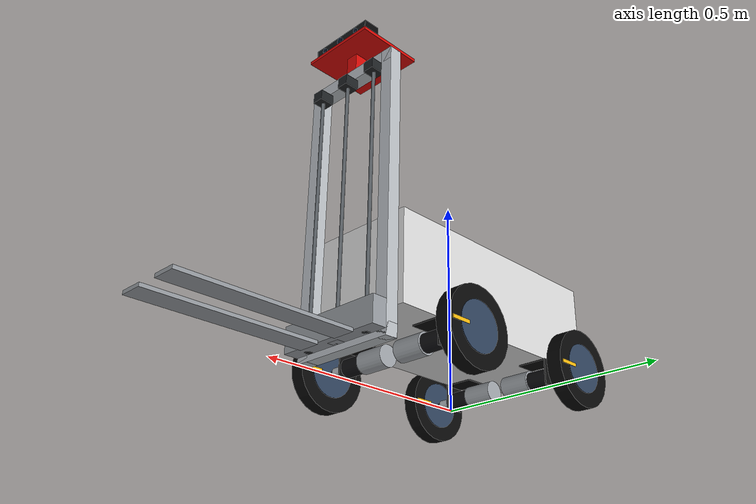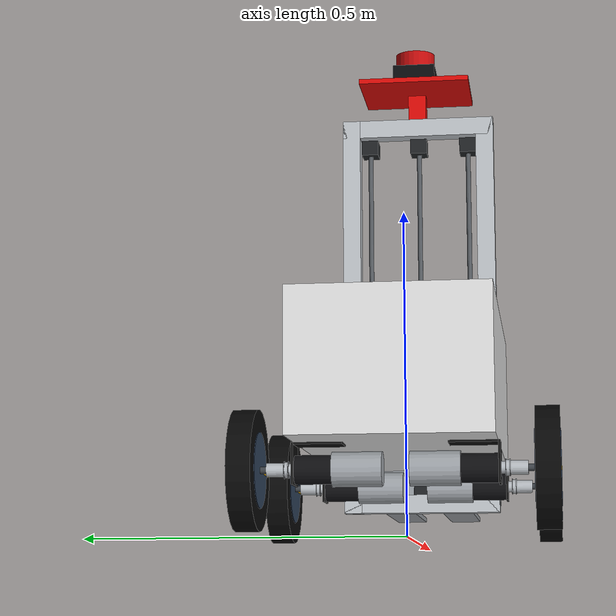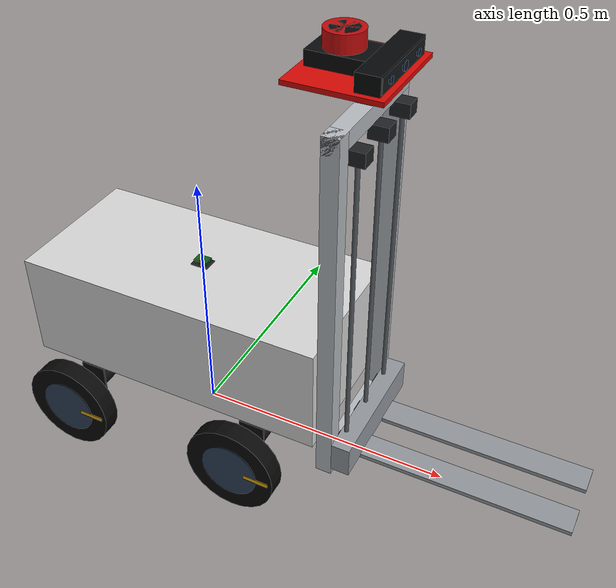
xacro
<?xml version="1.0"?>
<robot xmlns:xacro="http://www.ros.org/wiki/xacro" name="robot">

    <!-- Simulation is the current default.  A real-hardware launch can set
         use_sim:=false and provide its serial SystemInterface plugin name. -->
    <xacro:arg name="use_sim" default="true"/>
    <xacro:arg name="hardware_plugin"
               default="gz_ros2_control/GazeboSimSystem"/>
    <xacro:arg name="controllers_file"
               default="$(find tai_robot_one)/config/ros2_controllers.yaml"/>

    <!-- Real-hardware parameters are ignored by gz_ros2_control. Stable udev
         symlinks are mandatory because ttyUSB numbering is not deterministic. -->
    <xacro:arg name="drive_serial_port" default="/dev/tai_drive"/>
    <xacro:arg name="lift_serial_port" default="/dev/tai_lift"/>
    <xacro:arg name="use_lift" default="true"/>
    <xacro:arg name="home_lift_on_activate" default="true"/>
    <xacro:arg name="serial_startup_timeout_ms" default="3000"/>
    <xacro:arg name="serial_telemetry_timeout_ms" default="250"/>
    <xacro:arg name="lift_home_timeout_ms" default="70000"/>

    <xacro:include filename="robot_core.xacro"/>

</robot>

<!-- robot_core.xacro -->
<robot xmlns:xacro="http://www.ros.org/wiki/xacro">

    <xacro:include filename="inertial_macros.xacro"/>
    <xacro:include filename="forklift.xacro"/>
    <xacro:include filename="imu_bno055.xacro"/>
    <xacro:include filename="lidar.xacro"/>
    <xacro:include filename="camera_astra_pro.xacro"/>
    <xacro:include filename="sensor_mount.xacro"/>
    <xacro:include filename="ros2_control.xacro"/>
    <xacro:include filename="gazebo_control.xacro"/>
    <xacro:include filename="battery_pack.xacro"/>

    <!-- All dimensions are in metres and all masses are in kilograms. -->
    <xacro:property name="chassis_length" value="0.601"/>
    <xacro:property name="chassis_width" value="0.290"/>
    <xacro:property name="chassis_height" value="0.210"/>
    <xacro:property name="chassis_bottom_clearance" value="0.125"/>
    <xacro:property name="chassis_mass" value="40.0"/>

    <xacro:property name="wheelbase" value="0.355"/>
    <xacro:property name="wheel_track" value="0.428"/>
    <xacro:property name="wheel_radius" value="0.0875"/>
    <xacro:property name="wheel_width" value="0.035"/>
    <!-- Safety limit used by both the body controller and each wheel command
         interface.  0.50 m/s corresponds to 5.714 rad/s at this radius. -->
    <xacro:property name="max_vehicle_linear_speed" value="0.50"/>
    <xacro:property name="max_wheel_speed_rad_s"
                    value="${max_vehicle_linear_speed / wheel_radius}"/>
    <!-- Estimated total mass of one rubber-tyred, plastic-rim wheel. -->
    <xacro:property name="wheel_mass" value="0.5"/>
    <!-- Visual estimate only; update this when the actual rim is measured. -->
    <xacro:property name="rim_radius" value="0.055"/>

    <!-- Dry rough ceramic tile: longitudinal grip and reduced lateral grip
         for four-wheel skid-steer turning. These require real-world tuning. -->
    <xacro:property name="tire_ground_mu_longitudinal" value="0.85"/>
    <xacro:property name="tire_ground_mu_lateral" value="0.12"/>

    <xacro:property name="motor_gear_ratio" value="71.0"/>
    <xacro:property name="motor_no_load_speed_rpm" value="140.0"/>
    <xacro:property name="motor_rated_speed_rpm" value="126.0"/>
    <xacro:property name="kgf_cm_to_nm" value="0.0980665"/>
    <xacro:property name="motor_rated_torque"
                    value="${30.0 * kgf_cm_to_nm}"/>
    <xacro:property name="motor_stall_torque"
                    value="${98.0 * kgf_cm_to_nm}"/>
    <xacro:property name="motor_no_load_speed_rad_s"
                    value="${motor_no_load_speed_rpm * 2.0 * pi / 60.0}"/>
    <xacro:property name="motor_body_length" value="0.072"/>
    <xacro:property name="motor_body_radius" value="0.025"/>
    <xacro:property name="gearbox_length" value="0.0535"/>
    <xacro:property name="gearbox_radius" value="0.021"/>
    <xacro:property name="motor_total_length"
                    value="${motor_body_length + gearbox_length}"/>
    <xacro:property name="motor_mass" value="0.895"/>
    <xacro:property name="motor_shaft_length" value="0.025"/>
    <xacro:property name="motor_shaft_radius" value="0.005"/>

    <!-- 42-series cast-iron motor bracket from the supplied drawing. -->
    <xacro:property name="bracket_width" value="0.050"/>
    <xacro:property name="bracket_base_length" value="0.070"/>
    <xacro:property name="bracket_height" value="0.060"/>
    <xacro:property name="bracket_thickness" value="0.003"/>
    <xacro:property name="bracket_mass" value="0.123"/>

    <!-- 2GT-36T pulley: 10 mm bore, 6 mm belt, supplied dimensions. -->
    <xacro:property name="pulley_width" value="0.016"/>
    <xacro:property name="pulley_hub_width" value="0.009"/>
    <xacro:property name="pulley_tooth_width" value="0.007"/>
    <xacro:property name="pulley_hub_radius" value="0.00875"/>
    <xacro:property name="pulley_tooth_radius" value="0.011205"/>
    <xacro:property name="pulley_flange_radius" value="0.0125"/>
    <xacro:property name="pulley_flange_width" value="0.001"/>
    <!-- Tiny visual-only overlap prevents coplanar faces from flickering in RViz. -->
    <xacro:property name="visual_overlap" value="0.0002"/>

    <!-- TS7C-style 10-to-10 mm clamp coupling: OD 20 mm, length 25 mm. -->
    <xacro:property name="coupler_radius" value="0.010"/>
    <xacro:property name="coupler_length" value="0.025"/>
    <xacro:property name="wheel_inner_face_from_center" value="${wheel_width / 2}"/>
    <xacro:property name="chassis_side_to_wheel_inner_face"
                    value="${wheel_track / 2 - chassis_width / 2 - wheel_width / 2}"/>
    <!-- Exposed 10 mm wheel shaft between the coupling and the wheel. -->
    <xacro:property name="wheel_axle_radius" value="0.005"/>
    <xacro:property name="wheel_axle_length"
                    value="${chassis_side_to_wheel_inner_face - pulley_width - coupler_length}"/>

    <xacro:property name="chassis_center_z"
                    value="${chassis_bottom_clearance + chassis_height / 2}"/>
    <xacro:property name="chassis_z_from_base_link"
                    value="${chassis_center_z - wheel_radius}"/>
    <xacro:property name="chassis_bottom_from_base_link"
                    value="${chassis_bottom_clearance - wheel_radius}"/>

    <material name="chassis_white">
        <color rgba="0.85 0.85 0.85 1"/>
    </material>

    <material name="rubber_black">
        <color rgba="0.03 0.03 0.03 1"/>
    </material>

    <material name="wheel_marker_yellow">
        <color rgba="0.95 0.72 0.05 1"/>
    </material>

    <material name="plastic_rim">
        <color rgba="0.18 0.25 0.35 1"/>
    </material>

    <material name="motor_silver">
        <color rgba="0.62 0.64 0.66 1"/>
    </material>

    <material name="gearbox_black">
        <color rgba="0.06 0.06 0.07 1"/>
    </material>

    <material name="bracket_black">
        <color rgba="0.04 0.04 0.04 1"/>
    </material>

    <material name="aluminium">
        <color rgba="0.72 0.74 0.76 1"/>
    </material>

    <material name="steel_dark">
        <color rgba="0.25 0.27 0.29 1"/>
    </material>

    <!-- Ground projection at the geometric centre of the vehicle. -->
    <link name="base_footprint"/>

    <!-- Main robot frame at wheel-axle height. -->
    <joint name="base_footprint_joint" type="fixed">
        <parent link="base_footprint"/>
        <child link="base_link"/>
        <origin xyz="0 0 ${wheel_radius}" rpy="0 0 0"/>
    </joint>

    <link name="base_link"/>

    <!-- Chassis: 601 x 290 x 210 mm, with its bottom 125 mm above ground. -->
    <joint name="chassis_joint" type="fixed">
        <parent link="base_link"/>
        <child link="chassis"/>
        <origin xyz="0 0 ${chassis_z_from_base_link}" rpy="0 0 0"/>
    </joint>

    <link name="chassis">
        <visual>
            <geometry>
                <box size="${chassis_length} ${chassis_width} ${chassis_height}"/>
            </geometry>
            <material name="chassis_white"/>
        </visual>
        <collision>
            <geometry>
                <box size="${chassis_length} ${chassis_width} ${chassis_height}"/>
            </geometry>
        </collision>
        <xacro:inertial_box mass="${chassis_mass}"
                            x="${chassis_length}"
                            y="${chassis_width}"
                            z="${chassis_height}">
            <origin xyz="-0.080 0 -0.050" rpy="0 0 0"/>
        </xacro:inertial_box>
    </link>

    <!-- One fixed motor and L bracket. side=1 is left; side=-1 is right. -->
    <xacro:macro name="drive_hardware" params="position x side">
        <joint name="${position}_bracket_joint" type="fixed">
            <parent link="base_link"/>
            <child link="${position}_bracket"/>
            <origin xyz="${x} 0 0" rpy="0 0 0"/>
        </joint>

        <link name="${position}_bracket">
            <!-- Horizontal 50 x 70 x 3 mm plate, bolted below the chassis. -->
            <visual name="bracket_base_visual">
                <origin xyz="0 ${side * (chassis_width / 2 - bracket_base_length / 2)}
                                ${chassis_bottom_from_base_link - bracket_thickness / 2}"
                        rpy="0 0 0"/>
                <geometry>
                    <box size="${bracket_width} ${bracket_base_length} ${bracket_thickness}"/>
                </geometry>
                <material name="bracket_black"/>
            </visual>
            <collision name="bracket_base_collision">
                <origin xyz="0 ${side * (chassis_width / 2 - bracket_base_length / 2)}
                                ${chassis_bottom_from_base_link - bracket_thickness / 2}"
                        rpy="0 0 0"/>
                <geometry>
                    <box size="${bracket_width} ${bracket_base_length} ${bracket_thickness}"/>
                </geometry>
            </collision>

            <!-- Vertical 50 x 60 x 3 mm motor mounting plate. -->
            <visual name="bracket_vertical_visual">
                <origin xyz="0 ${side * (chassis_width / 2 + bracket_thickness / 2)}
                                ${chassis_bottom_from_base_link - bracket_height / 2}"
                        rpy="0 0 0"/>
                <geometry>
                    <box size="${bracket_width} ${bracket_thickness} ${bracket_height}"/>
                </geometry>
                <material name="bracket_black"/>
            </visual>
            <collision name="bracket_vertical_collision">
                <origin xyz="0 ${side * (chassis_width / 2 + bracket_thickness / 2)}
                                ${chassis_bottom_from_base_link - bracket_height / 2}"
                        rpy="0 0 0"/>
                <geometry>
                    <box size="${bracket_width} ${bracket_thickness} ${bracket_height}"/>
                </geometry>
            </collision>

            <!-- Approximate inertia for the complete 123 g L bracket. -->
            <xacro:inertial_box mass="${bracket_mass}"
                                x="${bracket_width}"
                                y="${bracket_base_length}"
                                z="${bracket_height}">
                <origin xyz="0 ${side * 0.127} 0.023" rpy="0 0 0"/>
            </xacro:inertial_box>
        </link>

        <joint name="${position}_motor_joint" type="fixed">
            <parent link="base_link"/>
            <child link="${position}_motor"/>
            <origin xyz="${x} 0 0" rpy="0 0 0"/>
        </joint>

        <link name="${position}_motor">
            <!-- 42 mm diameter planetary gearbox nearest the output shaft. -->
            <visual name="gearbox_visual">
                <origin xyz="0 ${side * (chassis_width / 2 - gearbox_length / 2)} 0"
                        rpy="${pi / 2} 0 0"/>
                <geometry>
                    <cylinder radius="${gearbox_radius}" length="${gearbox_length}"/>
                </geometry>
                <material name="gearbox_black"/>
            </visual>
            <collision name="gearbox_collision">
                <origin xyz="0 ${side * (chassis_width / 2 - gearbox_length / 2)} 0"
                        rpy="${pi / 2} 0 0"/>
                <geometry>
                    <cylinder radius="${gearbox_radius}" length="${gearbox_length}"/>
                </geometry>
            </collision>

            <!-- 895 motor body: 50 mm diameter and 72 mm long. -->
            <visual name="motor_body_visual">
                <origin xyz="0 ${side * (chassis_width / 2 - gearbox_length - motor_body_length / 2)} 0"
                        rpy="${pi / 2} 0 0"/>
                <geometry>
                    <cylinder radius="${motor_body_radius}" length="${motor_body_length}"/>
                </geometry>
                <material name="motor_silver"/>
            </visual>
            <collision name="motor_body_collision">
                <origin xyz="0 ${side * (chassis_width / 2 - gearbox_length - motor_body_length / 2)} 0"
                        rpy="${pi / 2} 0 0"/>
                <geometry>
                    <cylinder radius="${motor_body_radius}" length="${motor_body_length}"/>
                </geometry>
            </collision>

            <!-- Lumped approximation for the complete 895 g gearmotor. -->
            <xacro:inertial_cylinder mass="${motor_mass}"
                                      length="${motor_total_length}"
                                      radius="${motor_body_radius}">
                <origin xyz="0 ${side * (chassis_width / 2 - motor_total_length / 2)} 0"
                        rpy="${pi / 2} 0 0"/>
            </xacro:inertial_cylinder>
        </link>
    </xacro:macro>

    <!--
      One independently driven wheel. The wheel cylinder's native axis is Z,
      so its visual, collision and inertial frames are rotated onto the Y axis.
    -->
    <xacro:macro name="drive_wheel" params="position x y side">
        <joint name="${position}_wheel_joint" type="continuous">
            <parent link="base_link"/>
            <child link="${position}_wheel"/>
            <origin xyz="${x} ${y} 0" rpy="0 0 0"/>
            <axis xyz="0 1 0"/>
            <!-- 9.611 N.m short-duration peak; continuous rating is 2.942 N.m. -->
            <limit effort="${motor_stall_torque}"
                   velocity="${motor_no_load_speed_rad_s}"/>
            <dynamics damping="0.1" friction="0.1"/>
        </joint>

        <link name="${position}_wheel">
            <!-- Rubber tyre. -->
            <visual name="tyre_visual">
                <origin xyz="0 0 0" rpy="${pi / 2} 0 0"/>
                <geometry>
                    <cylinder radius="${wheel_radius}" length="${wheel_width}"/>
                </geometry>
                <material name="rubber_black"/>
            </visual>

            <!-- Plastic rim, made slightly wider so that its faces are visible. -->
            <visual name="rim_visual">
                <origin xyz="0 0 0" rpy="${pi / 2} 0 0"/>
                <geometry>
                    <cylinder radius="${rim_radius}" length="${wheel_width + 0.002}"/>
                </geometry>
                <material name="plastic_rim"/>
            </visual>

            <!-- Asymmetric marker makes wheel rotation visible in RViz. -->
            <visual name="rotation_marker_visual">
                <origin xyz="${wheel_radius * 0.62} 0 0" rpy="0 0 0"/>
                <geometry>
                    <box size="${wheel_radius * 0.55}
                               ${wheel_width + 0.003} 0.008"/>
                </geometry>
                <material name="wheel_marker_yellow"/>
            </visual>

            <!-- GT2 pulley: hub first, then the 36-tooth belt section. -->
            <visual name="pulley_hub_visual">
                <origin xyz="0 ${-side * (wheel_track / 2 - chassis_width / 2 - pulley_hub_width / 2)} 0"
                        rpy="${pi / 2} 0 0"/>
                <geometry>
                    <cylinder radius="${pulley_hub_radius}"
                              length="${pulley_hub_width + visual_overlap}"/>
                </geometry>
                <material name="aluminium"/>
            </visual>
            <visual name="pulley_teeth_visual">
                <origin xyz="0 ${-side * (wheel_track / 2 - chassis_width / 2 - pulley_hub_width - pulley_tooth_width / 2)} 0"
                        rpy="${pi / 2} 0 0"/>
                <geometry>
                    <cylinder radius="${pulley_tooth_radius}"
                              length="${pulley_tooth_width + 2 * visual_overlap}"/>
                </geometry>
                <material name="aluminium"/>
            </visual>
            <visual name="pulley_inner_flange_visual">
                <origin xyz="0 ${-side * (wheel_track / 2 - chassis_width / 2 - pulley_hub_width - pulley_flange_width / 2)} 0"
                        rpy="${pi / 2} 0 0"/>
                <geometry>
                    <cylinder radius="${pulley_flange_radius}" length="${pulley_flange_width}"/>
                </geometry>
                <material name="aluminium"/>
            </visual>
            <visual name="pulley_outer_flange_visual">
                <origin xyz="0 ${-side * (wheel_track / 2 - chassis_width / 2 - pulley_width + pulley_flange_width / 2)} 0"
                        rpy="${pi / 2} 0 0"/>
                <geometry>
                    <cylinder radius="${pulley_flange_radius}" length="${pulley_flange_width}"/>
                </geometry>
                <material name="aluminium"/>
            </visual>

            <!-- 10-to-10 mm clamp coupling between pulley and wheel. -->
            <visual name="coupler_visual">
                <origin xyz="0 ${-side * (wheel_track / 2 - chassis_width / 2 - pulley_width - coupler_length / 2)} 0"
                        rpy="${pi / 2} 0 0"/>
                <geometry>
                    <cylinder radius="${coupler_radius}"
                              length="${coupler_length + 2 * visual_overlap}"/>
                </geometry>
                <material name="aluminium"/>
            </visual>

            <!-- Only the exposed part of the 10 mm wheel shaft is rendered. -->
            <visual name="wheel_axle_visual">
                <origin xyz="0 ${-side * (wheel_width / 2 + wheel_axle_length / 2)} 0"
                        rpy="${pi / 2} 0 0"/>
                <geometry>
                    <cylinder radius="${wheel_axle_radius}"
                              length="${wheel_axle_length + 2 * visual_overlap}"/>
                </geometry>
                <material name="steel_dark"/>
            </visual>

            <collision>
                <origin xyz="0 0 0" rpy="0 0 0"/>
                <geometry>
                    <sphere radius="${wheel_radius}"/>
                </geometry>
            </collision>

            <xacro:inertial_cylinder mass="${wheel_mass}"
                                      length="${wheel_width}"
                                      radius="${wheel_radius}">
                <origin xyz="0 0 0" rpy="${pi / 2} 0 0"/>
            </xacro:inertial_cylinder>
        </link>

        <!-- Explicit anisotropic tyre friction for Gazebo Harmonic. -->
        <gazebo reference="${position}_wheel">
            <mu1>${tire_ground_mu_longitudinal}</mu1>
            <mu2>${tire_ground_mu_lateral}</mu2>
            <fdir1>1 0 0</fdir1>
        </gazebo>
    </xacro:macro>

    <!-- Wheelbase 355 mm; centre-to-centre track width 428 mm. -->
    <xacro:drive_hardware position="front_left"
                          x="${wheelbase / 2}" side="${1}"/>
    <xacro:drive_hardware position="front_right"
                          x="${wheelbase / 2}" side="${-1}"/>
    <xacro:drive_hardware position="rear_left"
                          x="${-wheelbase / 2}" side="${1}"/>
    <xacro:drive_hardware position="rear_right"
                          x="${-wheelbase / 2}" side="${-1}"/>

    <xacro:drive_wheel position="front_left"
                       x="${wheelbase / 2}" y="${wheel_track / 2}" side="${1}"/>
    <xacro:drive_wheel position="front_right"
                       x="${wheelbase / 2}" y="${-wheel_track / 2}" side="${-1}"/>
    <xacro:drive_wheel position="rear_left"
                       x="${-wheelbase / 2}" y="${wheel_track / 2}" side="${1}"/>
    <xacro:drive_wheel position="rear_right"
                       x="${-wheelbase / 2}" y="${-wheel_track / 2}" side="${-1}"/>

    <!-- Front lift mast and the 0-520 mm prismatic fork mechanism. -->
    <xacro:forklift_assembly parent="base_link"/>

    <xacro:if value="$(arg use_sim)">
        <xacro:mast_sensor_mount parent="mast_frame" include_lidar="true"/>
    </xacro:if>
    <xacro:unless value="$(arg use_sim)">
        <xacro:mast_sensor_mount parent="mast_frame" include_lidar="false"/>
        <xacro:fork_mast_lidar parent="base_footprint"
                               x="-0.1365" y="0.0" z="0.385"/>
    </xacro:unless>

    <!-- BNO055 mounted near the centre of the chassis top surface. -->
    <xacro:bno055_imu parent="chassis" x="0.0" y="0.0" yaw="0.0"/>

    <!-- Rear-mounted 8S2P 32140 LiFePO4 battery inside the chassis. -->
    <xacro:lfp_battery_pack parent="chassis"/>

    <!-- Stable controller-facing contract shared by simulation and hardware. -->
    <xacro:tai_robot_ros2_control hardware_plugin="$(arg hardware_plugin)"/>

    <!-- The Gazebo plugin creates controller_manager inside the simulated
         model.  A real-hardware launch starts controller_manager itself. -->
    <xacro:if value="$(arg use_sim)">
        <xacro:simulated_fork_safety_lidar parent="base_footprint"/>
        <!-- Simulation rear low scanner; real reverse recovery requires an equivalent sensor. -->
        <xacro:simulated_fork_safety_lidar parent="base_footprint"
            prefix="rear" x="-0.34" z="0.12" yaw="${pi}"/>
        <xacro:gazebo_ros2_control_plugin
            controllers_file="$(arg controllers_file)"/>
    </xacro:if>

</robot>

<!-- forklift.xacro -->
<robot xmlns:xacro="http://www.ros.org/wiki/xacro">

    <xacro:property name="fork_length" value="0.390"/>
    <xacro:property name="fork_mount_offset" value="0.065"/>
    <xacro:property name="fork_tip_from_chassis"
                    value="${fork_mount_offset + fork_length}"/>

    <xacro:property name="mast_width" value="0.260"/>
    <xacro:property name="fork_pair_width" value="0.155"/>
    <xacro:property name="fork_gap" value="0.049"/>
    <xacro:property name="fork_width"
                    value="${(fork_pair_width - fork_gap) / 2}"/>
    <xacro:property name="fork_center_y"
                    value="${fork_gap / 2 + fork_width / 2}"/>

    <xacro:property name="lift_travel" value="0.520"/>
    <xacro:property name="lift_joint_limit_margin" value="0.001"/>
    <!-- At lift_joint=0, the underside of each fork is 65 mm above ground. -->
    <xacro:property name="fork_ground_clearance" value="0.065"/>

    <xacro:property name="stepper_holding_torque" value="0.700"/>
    <xacro:property name="stepper_running_torque_factor" value="0.50"/>
    <xacro:property name="t8_screw_lead" value="0.008"/>
    <xacro:property name="t8_screw_efficiency" value="0.30"/>
    <xacro:property name="lift_max_velocity" value="0.05"/>
    <xacro:property name="stepper_available_torque"
                    value="${stepper_holding_torque * stepper_running_torque_factor}"/>
    <xacro:property name="lift_max_force"
                    value="${2.0 * pi * t8_screw_efficiency
                             * stepper_available_torque / t8_screw_lead}"/>

    <!-- Dimensions below are visual estimates pending direct measurement. -->
    <xacro:property name="mast_profile" value="0.030"/>
    <xacro:property name="mast_height" value="0.680"/>
    <!-- The underside of the aluminium mast is 55 mm above the ground. -->
    <xacro:property name="mast_bottom_ground" value="0.055"/>
    <xacro:property name="fork_thickness" value="0.008"/>
    <!-- Mast rear face touches the chassis; this carriage fills the remaining
         distance between the mast front face and the start of the forks. -->
    <xacro:property name="carriage_depth"
                    value="${fork_mount_offset - mast_profile}"/>
    <xacro:property name="carriage_height" value="0.060"/>
    <xacro:property name="guide_rod_radius" value="0.004"/>
    <xacro:property name="guide_rod_y" value="0.085"/>
    <xacro:property name="guide_housing_radius" value="0.009"/>
    <xacro:property name="guide_housing_length" value="0.035"/>
    <xacro:property name="guide_axis_x"
                    value="${mast_profile / 2 + guide_housing_radius}"/>
    <xacro:property name="shaft_support_depth" value="0.035"/>
    <xacro:property name="shaft_support_width" value="0.028"/>
    <xacro:property name="shaft_support_height" value="0.025"/>
    <xacro:property name="guide_bottom_z"
                    value="${mast_profile + shaft_support_height / 2}"/>
    <xacro:property name="guide_top_z"
                    value="${mast_height - mast_profile - shaft_support_height / 2}"/>
    <xacro:property name="guide_rod_length"
                    value="${guide_top_z - guide_bottom_z}"/>
    <xacro:property name="guide_rod_center_z"
                    value="${(guide_top_z + guide_bottom_z) / 2}"/>

    <!-- Estimated masses; replace with measured values before dynamic simulation. -->
    <xacro:property name="mast_mass" value="3.0"/>
    <xacro:property name="moving_fork_mass" value="4.0"/>

    <material name="extrusion_aluminium">
        <color rgba="0.72 0.74 0.76 1"/>
    </material>

    <material name="fork_galvanized">
        <color rgba="0.58 0.60 0.62 1"/>
    </material>

    <material name="lead_screw_steel">
        <color rgba="0.32 0.34 0.36 1"/>
    </material>

    <material name="bearing_dark">
        <color rgba="0.12 0.13 0.14 1"/>
    </material>

    <!-- SK8-style simplified end support for one guide shaft or lead screw. -->
    <xacro:macro name="shaft_support_block" params="name y z">
        <visual name="${name}_visual">
            <origin xyz="${guide_axis_x} ${y} ${z}" rpy="0 0 0"/>
            <geometry>
                <box size="${shaft_support_depth}
                           ${shaft_support_width}
                           ${shaft_support_height}"/>
            </geometry>
            <material name="bearing_dark"/>
        </visual>
    </xacro:macro>

    <xacro:macro name="forklift_assembly" params="parent">
        <!-- Mast origin: centre of its lower horizontal aluminium profile. -->
        <joint name="mast_joint" type="fixed">
            <parent link="${parent}"/>
            <child link="mast_frame"/>
            <origin xyz="${chassis_length / 2 + mast_profile / 2} 0
                         ${mast_bottom_ground - wheel_radius}"
                    rpy="0 0 0"/>
        </joint>

        <link name="mast_frame">
            <!-- Left and right 30 x 30 mm aluminium profiles. -->
            <visual name="mast_left_rail_visual">
                <origin xyz="0 ${mast_width / 2 - mast_profile / 2}
                             ${mast_height / 2}"
                        rpy="0 0 0"/>
                <geometry>
                    <box size="${mast_profile} ${mast_profile} ${mast_height}"/>
                </geometry>
                <material name="extrusion_aluminium"/>
            </visual>
            <visual name="mast_right_rail_visual">
                <origin xyz="0 ${-(mast_width / 2 - mast_profile / 2)}
                             ${mast_height / 2}"
                        rpy="0 0 0"/>
                <geometry>
                    <box size="${mast_profile} ${mast_profile} ${mast_height}"/>
                </geometry>
                <material name="extrusion_aluminium"/>
            </visual>

            <!-- Lower and upper cross-members complete the 260 mm-wide frame. -->
            <visual name="mast_lower_crossbar_visual">
                <origin xyz="0 0 ${mast_profile / 2}" rpy="0 0 0"/>
                <geometry>
                    <box size="${mast_profile} ${mast_width} ${mast_profile}"/>
                </geometry>
                <material name="extrusion_aluminium"/>
            </visual>
            <visual name="mast_upper_crossbar_visual">
                <origin xyz="0 0 ${mast_height - mast_profile / 2}" rpy="0 0 0"/>
                <geometry>
                    <box size="${mast_profile} ${mast_width} ${mast_profile}"/>
                </geometry>
                <material name="extrusion_aluminium"/>
            </visual>

            <!-- Two vertical 8 mm guide rods and the central T8 lead screw. -->
            <visual name="left_guide_rod_visual">
                <origin xyz="${guide_axis_x} ${guide_rod_y} ${guide_rod_center_z}"
                        rpy="0 0 0"/>
                <geometry>
                    <cylinder radius="${guide_rod_radius}"
                              length="${guide_rod_length}"/>
                </geometry>
                <material name="lead_screw_steel"/>
            </visual>
            <visual name="right_guide_rod_visual">
                <origin xyz="${guide_axis_x} ${-guide_rod_y} ${guide_rod_center_z}"
                        rpy="0 0 0"/>
                <geometry>
                    <cylinder radius="${guide_rod_radius}"
                              length="${guide_rod_length}"/>
                </geometry>
                <material name="lead_screw_steel"/>
            </visual>
            <visual name="t8_lead_screw_visual">
                <origin xyz="${guide_axis_x} 0 ${guide_rod_center_z}" rpy="0 0 0"/>
                <geometry>
                    <cylinder radius="${guide_rod_radius}"
                              length="${guide_rod_length}"/>
                </geometry>
                <material name="lead_screw_steel"/>
            </visual>

            <!-- End supports prevent all three shafts from appearing unsupported. -->
            <xacro:shaft_support_block name="left_guide_lower_support"
                                       y="${guide_rod_y}" z="${guide_bottom_z}"/>
            <xacro:shaft_support_block name="left_guide_upper_support"
                                       y="${guide_rod_y}" z="${guide_top_z}"/>
            <xacro:shaft_support_block name="right_guide_lower_support"
                                       y="${-guide_rod_y}" z="${guide_bottom_z}"/>
            <xacro:shaft_support_block name="right_guide_upper_support"
                                       y="${-guide_rod_y}" z="${guide_top_z}"/>
            <xacro:shaft_support_block name="lead_screw_lower_support"
                                       y="0" z="${guide_bottom_z}"/>
            <xacro:shaft_support_block name="lead_screw_upper_support"
                                       y="0" z="${guide_top_z}"/>

            <!-- A simple bounding collision keeps the mast inexpensive to simulate. -->
            <collision name="mast_collision">
                <origin xyz="0 0 ${mast_height / 2}" rpy="0 0 0"/>
                <geometry>
                    <box size="${mast_profile} ${mast_width} ${mast_height}"/>
                </geometry>
            </collision>

            <xacro:inertial_box mass="${mast_mass}"
                                x="${mast_profile}"
                                y="${mast_width}"
                                z="${mast_height}">
                <origin xyz="0 0 ${mast_height / 2}" rpy="0 0 0"/>
            </xacro:inertial_box>
        </link>

        <!--
          lift_joint position is the fork height above its lowest position.
          The origin puts the underside of the forks 65 mm above the ground.
        -->
        <joint name="lift_joint" type="prismatic">
            <parent link="mast_frame"/>
            <child link="fork_carriage"/>
            <origin xyz="${mast_profile / 2} 0
                         ${fork_ground_clearance + fork_thickness / 2 - mast_bottom_ground}"
                    rpy="0 0 0"/>
            <axis xyz="0 0 1"/>
            <limit lower="${-lift_joint_limit_margin}"
                   upper="${lift_travel + lift_joint_limit_margin}"
                   effort="${lift_max_force}" velocity="${lift_max_velocity}"/>
            <dynamics damping="5.0" friction="2.0"/>
        </joint>

        <link name="fork_carriage">
            <!-- Moving cross-member linking the two forks and lift guides. -->
            <visual name="carriage_visual">
                <origin xyz="${carriage_depth / 2} 0 ${carriage_height / 2}"
                        rpy="0 0 0"/>
                <geometry>
                    <box size="${carriage_depth} ${mast_width} ${carriage_height}"/>
                </geometry>
                <material name="fork_galvanized"/>
            </visual>

            <!-- Moving round bearing blocks on the two 8 mm guide rods. -->
            <visual name="left_guide_housing_visual">
                <origin xyz="${guide_axis_x - mast_profile / 2} ${guide_rod_y}
                             ${guide_housing_length / 2}"
                        rpy="0 0 0"/>
                <geometry>
                    <cylinder radius="${guide_housing_radius}"
                              length="${guide_housing_length}"/>
                </geometry>
                <material name="bearing_dark"/>
            </visual>
            <visual name="right_guide_housing_visual">
                <origin xyz="${guide_axis_x - mast_profile / 2} ${-guide_rod_y}
                             ${guide_housing_length / 2}"
                        rpy="0 0 0"/>
                <geometry>
                    <cylinder radius="${guide_housing_radius}"
                              length="${guide_housing_length}"/>
                </geometry>
                <material name="bearing_dark"/>
            </visual>

            <!-- Simplified moving T8 nut block around the central lead screw. -->
            <visual name="t8_nut_block_visual">
                <origin xyz="${guide_axis_x - mast_profile / 2} 0 0.015"
                        rpy="0 0 0"/>
                <geometry>
                    <box size="0.020 0.030 0.030"/>
                </geometry>
                <material name="fork_galvanized"/>
            </visual>
            <collision name="carriage_collision">
                <origin xyz="${carriage_depth / 2} 0 ${carriage_height / 2}"
                        rpy="0 0 0"/>
                <geometry>
                    <box size="${carriage_depth} ${mast_width} ${carriage_height}"/>
                </geometry>
            </collision>

            <visual name="left_fork_visual">
                <origin xyz="${carriage_depth + fork_length / 2}
                             ${fork_center_y} 0"
                        rpy="0 0 0"/>
                <geometry>
                    <box size="${fork_length} ${fork_width} ${fork_thickness}"/>
                </geometry>
                <material name="fork_galvanized"/>
            </visual>
            <visual name="right_fork_visual">
                <origin xyz="${carriage_depth + fork_length / 2}
                             ${-fork_center_y} 0"
                        rpy="0 0 0"/>
                <geometry>
                    <box size="${fork_length} ${fork_width} ${fork_thickness}"/>
                </geometry>
                <material name="fork_galvanized"/>
            </visual>
            <collision name="left_fork_collision">
                <origin xyz="${carriage_depth + fork_length / 2}
                             ${fork_center_y} 0"
                        rpy="0 0 0"/>
                <geometry>
                    <box size="${fork_length} ${fork_width} ${fork_thickness}"/>
                </geometry>
            </collision>
            <collision name="right_fork_collision">
                <origin xyz="${carriage_depth + fork_length / 2}
                             ${-fork_center_y} 0"
                        rpy="0 0 0"/>
                <geometry>
                    <box size="${fork_length} ${fork_width} ${fork_thickness}"/>
                </geometry>
            </collision>

            <!-- Bounding-box approximation of the moving carriage and two forks. -->
            <xacro:inertial_box mass="${moving_fork_mass}"
                                x="${fork_length}"
                                y="${fork_pair_width}"
                                z="${carriage_height}">
                <origin xyz="${carriage_depth + fork_length / 2}
                             0 ${carriage_height / 4}"
                        rpy="0 0 0"/>
            </xacro:inertial_box>
        </link>
    </xacro:macro>

</robot>

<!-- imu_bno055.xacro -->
<robot xmlns:xacro="http://www.ros.org/wiki/xacro">

    <!--
      Generic BNO055 breakout-board model. The PCB dimensions vary by vendor;
      replace these estimates with measurements of the board used on the robot.
    -->
    <xacro:property name="imu_board_length" value="0.027"/>
    <xacro:property name="imu_board_width" value="0.020"/>
    <xacro:property name="imu_board_thickness" value="0.004"/>
    <xacro:property name="imu_mount_length" value="0.035"/>
    <xacro:property name="imu_mount_width" value="0.028"/>
    <xacro:property name="imu_mount_thickness" value="0.002"/>
    <xacro:property name="imu_standoff_height" value="0.004"/>
    <xacro:property name="imu_standoff_radius" value="0.0015"/>
    <xacro:property name="imu_mass" value="0.010"/>

    <material name="imu_pcb_green">
        <color rgba="0.02 0.38 0.12 1"/>
    </material>

    <material name="imu_chip_black">
        <color rgba="0.03 0.03 0.035 1"/>
    </material>

    <material name="imu_mount_black">
        <color rgba="0.10 0.10 0.11 1"/>
    </material>

    <material name="imu_pin_gold">
        <color rgba="0.72 0.50 0.08 1"/>
    </material>

    <!--
      imu_link is located at the centre of the PCB. With rpy=0, its axes are:
      +X robot forward, +Y robot left and +Z upward (REP-103 convention).
    -->
    <xacro:macro name="bno055_imu" params="parent x:=0.0 y:=0.0 yaw:=0.0">
        <joint name="imu_joint" type="fixed">
            <parent link="${parent}"/>
            <child link="imu_link"/>
            <origin xyz="${x} ${y}
                         ${chassis_height / 2 + imu_mount_thickness
                           + imu_standoff_height + imu_board_thickness / 2}"
                    rpy="0 0 ${yaw}"/>
        </joint>

        <link name="imu_link">
            <!-- BNO055 breakout PCB. -->
            <visual name="imu_board_visual">
                <geometry>
                    <box size="${imu_board_length} ${imu_board_width}
                               ${imu_board_thickness}"/>
                </geometry>
                <material name="imu_pcb_green"/>
            </visual>

            <!-- Sensor IC on the top side of the board. -->
            <visual name="imu_chip_visual">
                <origin xyz="0 0 ${imu_board_thickness / 2 + 0.00075}"
                        rpy="0 0 0"/>
                <geometry>
                    <box size="0.0052 0.0038 0.0015"/>
                </geometry>
                <material name="imu_chip_black"/>
            </visual>

            <!-- Header strip indicates the electrical-connector side. -->
            <visual name="imu_header_visual">
                <origin xyz="0 ${-(imu_board_width / 2 - 0.0015)}
                             ${imu_board_thickness / 2 + 0.001}"
                        rpy="0 0 0"/>
                <geometry>
                    <box size="0.018 0.0025 0.002"/>
                </geometry>
                <material name="imu_pin_gold"/>
            </visual>

            <!-- Mounting plate below the sensor. -->
            <visual name="imu_mount_visual">
                <origin xyz="0 0
                             ${-(imu_board_thickness / 2 + imu_standoff_height
                                + imu_mount_thickness / 2)}"
                        rpy="0 0 0"/>
                <geometry>
                    <box size="${imu_mount_length} ${imu_mount_width}
                               ${imu_mount_thickness}"/>
                </geometry>
                <material name="imu_mount_black"/>
            </visual>

            <!-- Four simplified PCB standoffs. -->
            <xacro:macro name="imu_standoff" params="name sx sy">
                <visual name="${name}_visual">
                    <origin xyz="${sx * 0.0105} ${sy * 0.007}
                                 ${-(imu_board_thickness / 2 + imu_standoff_height / 2)}"
                            rpy="0 0 0"/>
                    <geometry>
                        <cylinder radius="${imu_standoff_radius}"
                                  length="${imu_standoff_height}"/>
                    </geometry>
                    <material name="imu_mount_black"/>
                </visual>
            </xacro:macro>
            <xacro:imu_standoff name="imu_front_left_standoff" sx="1" sy="1"/>
            <xacro:imu_standoff name="imu_front_right_standoff" sx="1" sy="-1"/>
            <xacro:imu_standoff name="imu_rear_left_standoff" sx="-1" sy="1"/>
            <xacro:imu_standoff name="imu_rear_right_standoff" sx="-1" sy="-1"/>

            <collision name="imu_board_collision">
                <geometry>
                    <box size="${imu_board_length} ${imu_board_width}
                               ${imu_board_thickness}"/>
                </geometry>
            </collision>

            <xacro:inertial_box mass="${imu_mass}"
                                x="${imu_board_length}"
                                y="${imu_board_width}"
                                z="${imu_board_thickness}">
                <origin xyz="0 0 0" rpy="0 0 0"/>
            </xacro:inertial_box>
        </link>

        <!-- Gazebo Harmonic IMU. Axes follow imu_link / REP-103. -->
        <gazebo reference="imu_link">
            <sensor name="imu_sensor" type="imu">
                <always_on>true</always_on>
                <update_rate>100</update_rate>
                <topic>/imu</topic>
                <gz_frame_id>imu_link</gz_frame_id>
                <imu>
                    <angular_velocity>
                        <x><noise type="gaussian"><mean>0</mean><stddev>0.0002</stddev></noise></x>
                        <y><noise type="gaussian"><mean>0</mean><stddev>0.0002</stddev></noise></y>
                        <z><noise type="gaussian"><mean>0</mean><stddev>0.0002</stddev></noise></z>
                    </angular_velocity>
                    <linear_acceleration>
                        <x><noise type="gaussian"><mean>0</mean><stddev>0.017</stddev></noise></x>
                        <y><noise type="gaussian"><mean>0</mean><stddev>0.017</stddev></noise></y>
                        <z><noise type="gaussian"><mean>0</mean><stddev>0.017</stddev></noise></z>
                    </linear_acceleration>
                </imu>
            </sensor>
        </gazebo>
    </xacro:macro>

</robot>

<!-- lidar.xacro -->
<robot xmlns:xacro="http://www.ros.org/wiki/xacro">

    <!-- SLAMTEC RPLIDAR A1M8 mounted above the fixed forklift mast.
         Manufacturer envelope: 96.8 x 70.3 x 55 mm, mass: 170 g. -->
    <xacro:property name="lidar_body_width" value="0.0968"/>
    <xacro:property name="lidar_body_depth" value="0.0703"/>
    <xacro:property name="lidar_body_height" value="0.055"/>
    <xacro:property name="lidar_turret_radius" value="0.033"/>
    <xacro:property name="lidar_mass" value="0.170"/>
    <!-- Measured on the real robot: ground to the centre of the laser eye. -->
    <xacro:property name="lidar_scan_height_ground" value="0.835"/>

    <material name="lidar_black">
        <color rgba="0.035 0.040 0.045 1"/>
    </material>

    <material name="lidar_red">
        <color rgba="0.75 0.04 0.04 1"/>
    </material>

    <xacro:macro name="fork_mast_lidar"
                 params="parent x:=0.0 y:=0.0 z:=0.0">
        <joint name="lidar_joint" type="fixed">
            <parent link="${parent}"/>
            <child link="lidar_link"/>
            <origin xyz="${x} ${y} ${z}" rpy="0 0 0"/>
        </joint>

        <!-- lidar_link is the optical scan plane. Its absolute height is set
             by the selected temporary or final mounting joint. -->
        <link name="lidar_link">
            <visual name="a1m8_base_visual">
                <!-- Bottom of the lidar sits on the common sensor plate. -->
                <origin xyz="0 0 -0.0375" rpy="0 0 0"/>
                <geometry>
                    <box size="${lidar_body_width} ${lidar_body_depth} 0.025"/>
                </geometry>
                <material name="lidar_black"/>
            </visual>
            <visual name="a1m8_turret_visual">
                <origin xyz="0 0 -0.0125" rpy="0 0 0"/>
                <geometry>
                    <cylinder radius="${lidar_turret_radius}" length="0.035"/>
                </geometry>
                <material name="lidar_red"/>
            </visual>
            <visual name="a1m8_top_cap_visual">
                <origin xyz="0 0 0.0025" rpy="0 0 0"/>
                <geometry>
                    <cylinder radius="${lidar_turret_radius * 0.72}" length="0.005"/>
                </geometry>
                <material name="lidar_black"/>
            </visual>
            <collision name="a1m8_body_collision">
                <!-- The scan plane is 5 mm below the top of the housing. -->
                <origin xyz="0 0 ${-lidar_body_height / 2 + 0.005}"
                        rpy="0 0 0"/>
                <geometry>
                    <box size="${lidar_body_width} ${lidar_body_depth} ${lidar_body_height}"/>
                </geometry>
            </collision>
            <xacro:inertial_box mass="${lidar_mass}"
                                x="${lidar_body_width}"
                                y="${lidar_body_depth}"
                                z="${lidar_body_height}">
                <origin xyz="0 0 ${-lidar_body_height / 2 + 0.005}"
                        rpy="0 0 0"/>
            </xacro:inertial_box>
        </link>

        <gazebo>
            <plugin filename="libtai_physics_lidar.so"
                    name="tai_robot_one::PhysicsLidar">
                <frame_id>lidar_link</frame_id>
                <!-- Fixed joints are lumped into base_footprint by URDF->SDF.
                     Express the laser eye pose in that physics link. -->
                <parent_link>base_footprint</parent_link>
                <sensor_pose>${chassis_length / 2.0 + mast_profile / 2.0 + lidar_x_on_mount} 0
                              ${lidar_scan_height_ground} 0 0 0</sensor_pose>
                <topic>/scan</topic>
                <!-- Run the A1M8 at exactly 7 revolutions/second, within its
                     manufacturer-supported configurable scan-rate range. -->
                <update_rate>7.0</update_rate>
                <!-- Preserve the A1M8 sampling rate of approximately 8 kHz:
                     1143 samples/rev * 7 rev/s = 8001 samples/s. -->
                <samples>1143</samples>
                <angle_min>${-pi}</angle_min>
                <angle_max>${pi}</angle_max>
                <range_min>0.15</range_min>
                <range_max>12.0</range_max>
                <noise_stddev>0.003</noise_stddev>
            </plugin>
        </gazebo>
    </xacro:macro>

    <xacro:macro name="simulated_fork_safety_lidar"
                 params="parent x:=0.68 y:=0.0 z:=0.12 prefix:=fork yaw:=0.0">
        <joint name="${prefix}_safety_joint" type="fixed">
            <parent link="${parent}"/>
            <child link="${prefix}_safety_link"/>
            <origin xyz="${x} ${y} ${z}" rpy="0 0 ${yaw}"/>
        </joint>
        <link name="${prefix}_safety_link">
            <!-- Tiny inertial keeps this otherwise massless sensor frame as
                 an SDF link when preserveFixedJoint is enabled. -->
            <inertial>
                <origin xyz="0 0 0" rpy="0 0 0"/>
                <mass value="0.001"/>
                <inertia ixx="0.000001" ixy="0" ixz="0"
                         iyy="0.000001" iyz="0" izz="0.000001"/>
            </inertial>
        </link>

        <gazebo reference="${prefix}_safety_joint">
            <preserveFixedJoint>true</preserveFixedJoint>
        </gazebo>

        <gazebo>
            <plugin filename="libtai_physics_lidar.so"
                    name="tai_robot_one::PhysicsLidar">
                <frame_id>${prefix}_safety_link</frame_id>
                <parent_link>${prefix}_safety_link</parent_link>
                <sensor_pose>0 0 0 0 0 0</sensor_pose>
                <topic>/${prefix}_scan</topic>
                <update_rate>20.0</update_rate>
                <samples>361</samples>
                <angle_min>${-pi / 2.0}</angle_min>
                <angle_max>${pi / 2.0}</angle_max>
                <range_min>0.03</range_min>
                <range_max>2.0</range_max>
                <noise_stddev>0.002</noise_stddev>
            </plugin>
        </gazebo>
    </xacro:macro>

</robot>

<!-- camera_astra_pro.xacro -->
<robot xmlns:xacro="http://www.ros.org/wiki/xacro">

    <!-- Measured / supplied Astra Pro specifications (W x H x D). -->
    <xacro:property name="astra_width" value="0.165"/>
    <xacro:property name="astra_height" value="0.030"/>
    <xacro:property name="astra_depth" value="0.040"/>
    <xacro:property name="astra_mass" value="0.310"/>
    <xacro:property name="astra_horizontal_fov" value="${60.0 * pi / 180.0}"/>
    <xacro:property name="astra_vertical_fov" value="${49.5 * pi / 180.0}"/>
    <xacro:property name="astra_diagonal_fov" value="${73.0 * pi / 180.0}"/>
    <xacro:property name="astra_image_width" value="160"/>
    <xacro:property name="astra_image_height" value="120"/>
    <xacro:property name="astra_update_rate" value="10"/>
    <xacro:property name="astra_fx"
                    value="${(astra_image_width / 2.0)
                             / tan(astra_horizontal_fov / 2.0)}"/>
    <xacro:property name="astra_fy"
                    value="${(astra_image_height / 2.0)
                             / tan(astra_vertical_fov / 2.0)}"/>
    <xacro:property name="astra_render_near" value="0.005"/>
    <xacro:property name="astra_min_depth" value="0.6"/>
    <xacro:property name="astra_max_depth" value="8.0"/>
    <!-- Measured on the real robot: ground to the centre of the camera eye. -->
    <xacro:property name="camera_eye_height_ground" value="0.800"/>

    <material name="astra_black">
        <color rgba="0.025 0.028 0.032 1"/>
    </material>
    <material name="astra_front">
        <color rgba="0.08 0.09 0.10 1"/>
    </material>
    <material name="astra_lens">
        <color rgba="0.04 0.10 0.17 1"/>
    </material>

    <xacro:macro name="astra_pro_camera"
                 params="parent x:=0.0 y:=0.0 z:=0.0 pitch:=0.0">
        <!-- camera_link is located at the centre of the forward-facing eye.
             REP-103 axes are X forward, Y left and Z up. -->
        <joint name="camera_joint" type="fixed">
            <parent link="${parent}"/>
            <child link="camera_link"/>
            <origin xyz="${x} ${y} ${z}" rpy="0 ${pitch} 0"/>
        </joint>

        <link name="camera_link">
            <!-- The optical face is at x=0; the housing extends rearward. -->
            <visual name="astra_housing_visual">
                <origin xyz="${-astra_depth / 2} 0 0" rpy="0 0 0"/>
                <geometry>
                    <box size="${astra_depth} ${astra_width} ${astra_height}"/>
                </geometry>
                <material name="astra_black"/>
            </visual>
            <visual name="astra_front_panel_visual">
                <origin xyz="0.0005 0 0" rpy="0 0 0"/>
                <geometry>
                    <box size="0.001 ${astra_width * 0.96} ${astra_height * 0.84}"/>
                </geometry>
                <material name="astra_front"/>
            </visual>

            <!-- Three front elements make the RGB-D camera recognizable. -->
            <visual name="astra_rgb_lens_visual">
                <origin xyz="0.002 0 0" rpy="0 ${pi / 2} 0"/>
                <geometry><cylinder radius="0.008" length="0.004"/></geometry>
                <material name="astra_lens"/>
            </visual>
            <visual name="astra_ir_lens_visual">
                <origin xyz="0.002 0.052 0" rpy="0 ${pi / 2} 0"/>
                <geometry><cylinder radius="0.006" length="0.004"/></geometry>
                <material name="astra_lens"/>
            </visual>
            <visual name="astra_projector_visual">
                <origin xyz="0.002 -0.052 0" rpy="0 ${pi / 2} 0"/>
                <geometry><cylinder radius="0.006" length="0.004"/></geometry>
                <material name="astra_lens"/>
            </visual>

            <collision name="astra_housing_collision">
                <origin xyz="${-astra_depth / 2} 0 0" rpy="0 0 0"/>
                <geometry>
                    <box size="${astra_depth} ${astra_width} ${astra_height}"/>
                </geometry>
            </collision>
            <xacro:inertial_box mass="${astra_mass}"
                                x="${astra_depth}"
                                y="${astra_width}"
                                z="${astra_height}">
                <origin xyz="${-astra_depth / 2} 0 0" rpy="0 0 0"/>
            </xacro:inertial_box>
        </link>

        <joint name="camera_optical_joint" type="fixed">
            <parent link="camera_link"/>
            <child link="camera_link_optical"/>
            <origin xyz="0 0 0" rpy="${-pi / 2} 0 ${-pi / 2}"/>
        </joint>

        <link name="camera_link_optical"/>

        <!-- Gazebo Harmonic RGB-D approximation of the Astra Pro. -->
        <gazebo reference="camera_link">
            <sensor name="astra_pro_rgbd" type="rgbd_camera">
                <always_on>true</always_on>
                <update_rate>${astra_update_rate}</update_rate>
                <visualize>false</visualize>
                <topic>/camera</topic>
                <gz_frame_id>camera_link</gz_frame_id>
                <camera>
                    <optical_frame_id>camera_link</optical_frame_id>
                    <!-- Separate fx/fy values below reproduce 60 deg horizontal
                         and 49.5 deg vertical FOV at the selected resolution. -->
                    <horizontal_fov>${astra_horizontal_fov}</horizontal_fov>
                    <image>
                        <width>${astra_image_width}</width>
                        <height>${astra_image_height}</height>
                    </image>
                    <clip>
                        <near>${astra_render_near}</near>
                        <far>${astra_max_depth}</far>
                    </clip>
                    <lens>
                        <intrinsics>
                            <fx>${astra_fx}</fx>
                            <fy>${astra_fy}</fy>
                            <cx>${astra_image_width / 2.0}</cx>
                            <cy>${astra_image_height / 2.0}</cy>
                            <s>0.0</s>
                        </intrinsics>
                        <projection>
                            <p_fx>${astra_fx}</p_fx>
                            <p_fy>${astra_fy}</p_fy>
                            <p_cx>${astra_image_width / 2.0}</p_cx>
                            <p_cy>${astra_image_height / 2.0}</p_cy>
                            <tx>0.0</tx>
                            <ty>0.0</ty>
                        </projection>
                    </lens>
                </camera>
                <enable_metrics>true</enable_metrics>
            </sensor>
        </gazebo>
    </xacro:macro>

</robot>

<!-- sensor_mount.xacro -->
<robot xmlns:xacro="http://www.ros.org/wiki/xacro">

    <!-- Shared 3D-printed top bracket seen on the real forklift mast. -->
    <!-- Trim the plate to the sensor envelope instead of leaving long tabs. -->
    <xacro:property name="sensor_plate_side_margin" value="0.010"/>
    <xacro:property name="sensor_plate_width"
                    value="${astra_width + 2.0 * sensor_plate_side_margin}"/>
    <xacro:property name="sensor_plate_thickness" value="0.008"/>
    <!-- The riser is exactly 30 x 30 mm and shares the extrusion centreline. -->
    <xacro:property name="sensor_riser_width" value="${mast_profile}"/>
    <xacro:property name="sensor_mount_mass" value="0.200"/>

    <!-- Both devices stand on the plate. The camera is farther forward (+X)
         and its eye is 35 mm lower than the lidar scan plane. -->
    <xacro:property name="camera_front_overhang" value="0.010"/>
    <!-- sensor_mount_link is on the aluminium-extrusion centreline. This puts
         the camera face exactly 10 mm ahead of the T8 support front face. -->
    <xacro:property name="camera_x_on_mount"
                    value="${guide_axis_x + shaft_support_depth / 2.0
                             + camera_front_overhang}"/>
    <!-- Put the lidar behind the camera with a 4 mm physical gap between
         their housings, while keeping both devices on the same plate. -->
    <xacro:property name="sensor_housing_gap" value="0.004"/>
    <xacro:property name="lidar_x_on_mount"
                    value="${camera_x_on_mount - astra_depth
                             - sensor_housing_gap - lidar_body_width / 2.0}"/>
    <xacro:property name="sensor_plate_end_margin" value="0.010"/>
    <xacro:property name="sensor_plate_rear_x"
                    value="${lidar_x_on_mount - lidar_body_width / 2.0
                             - sensor_plate_end_margin}"/>
    <xacro:property name="sensor_plate_front_x"
                    value="${camera_x_on_mount + sensor_plate_end_margin}"/>
    <xacro:property name="sensor_plate_length"
                    value="${sensor_plate_front_x - sensor_plate_rear_x}"/>
    <xacro:property name="sensor_plate_center_x"
                    value="${(sensor_plate_front_x + sensor_plate_rear_x) / 2.0}"/>
    <xacro:property name="sensor_plate_top_ground"
                    value="${camera_eye_height_ground - astra_height / 2.0}"/>
    <xacro:property name="sensor_plate_center_z"
                    value="${sensor_plate_top_ground - lidar_scan_height_ground
                             - sensor_plate_thickness / 2.0}"/>
    <xacro:property name="sensor_riser_height"
                    value="${sensor_plate_top_ground - sensor_plate_thickness
                             - mast_bottom_ground - mast_height}"/>
    <xacro:property name="sensor_riser_center_z"
                    value="${mast_bottom_ground + mast_height
                             + sensor_riser_height / 2.0
                             - lidar_scan_height_ground}"/>

    <material name="sensor_bracket_red">
        <color rgba="0.85 0.035 0.02 1"/>
    </material>

    <xacro:macro name="mast_sensor_mount" params="parent include_lidar:=true">
        <!-- The mount frame lies on the laser scan plane. Because the mast is
             fixed, lifting the fork carriage does not move either sensor. -->
        <joint name="sensor_mount_joint" type="fixed">
            <parent link="${parent}"/>
            <child link="sensor_mount_link"/>
            <origin xyz="0 0
                         ${lidar_scan_height_ground - mast_bottom_ground}"
                    rpy="0 0 0"/>
        </joint>

        <link name="sensor_mount_link">
            <visual name="sensor_top_plate_visual">
                <origin xyz="${sensor_plate_center_x} 0
                             ${sensor_plate_center_z}"
                        rpy="0 0 0"/>
                <geometry>
                    <box size="${sensor_plate_length} ${sensor_plate_width}
                               ${sensor_plate_thickness}"/>
                </geometry>
                <material name="sensor_bracket_red"/>
            </visual>
            <visual name="sensor_riser_visual">
                <origin xyz="0 0 ${sensor_riser_center_z}"
                        rpy="0 0 0"/>
                <geometry>
                    <box size="${mast_profile} ${sensor_riser_width}
                               ${sensor_riser_height}"/>
                </geometry>
                <material name="sensor_bracket_red"/>
            </visual>

            <collision name="sensor_top_plate_collision">
                <origin xyz="${sensor_plate_center_x} 0
                             ${sensor_plate_center_z}"
                        rpy="0 0 0"/>
                <geometry>
                    <box size="${sensor_plate_length} ${sensor_plate_width}
                               ${sensor_plate_thickness}"/>
                </geometry>
            </collision>
            <collision name="sensor_riser_collision">
                <origin xyz="0 0 ${sensor_riser_center_z}"
                        rpy="0 0 0"/>
                <geometry>
                    <box size="${mast_profile} ${sensor_riser_width}
                               ${sensor_riser_height}"/>
                </geometry>
            </collision>
            <xacro:inertial_box mass="${sensor_mount_mass}"
                                x="${sensor_plate_length}"
                                y="${sensor_plate_width}"
                                z="${sensor_plate_thickness}">
                <origin xyz="${sensor_plate_center_x} 0
                             ${sensor_plate_center_z}"
                        rpy="0 0 0"/>
            </xacro:inertial_box>
        </link>

        <xacro:if value="${include_lidar}">
            <xacro:fork_mast_lidar parent="sensor_mount_link"
                                   x="${lidar_x_on_mount}" y="0" z="0"/>
        </xacro:if>
        <xacro:astra_pro_camera parent="sensor_mount_link"
                                x="${camera_x_on_mount}" y="0"
                                z="${camera_eye_height_ground
                                     - lidar_scan_height_ground}"/>
    </xacro:macro>

</robot>

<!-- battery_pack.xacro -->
<robot xmlns:xacro="http://www.ros.org/wiki/xacro">

    <xacro:property name="battery_cell_count" value="16"/>
    <xacro:property name="battery_cell_mass" value="0.295"/>
    <xacro:property name="battery_aux_mass" value="0.800"/>
    <xacro:property name="battery_pack_mass"
                    value="${battery_cell_count * battery_cell_mass + battery_aux_mass}"/>

    <!-- Estimated 4 x 4 vertical-cell enclosure. -->
    <xacro:property name="battery_pack_length" value="0.160"/>
    <xacro:property name="battery_pack_width" value="0.160"/>
    <xacro:property name="battery_pack_height" value="0.170"/>
    <xacro:property name="battery_rear_clearance" value="0.020"/>
    <xacro:property name="battery_bottom_clearance" value="0.015"/>

    <material name="battery_case_black">
        <color rgba="0.055 0.065 0.060 1"/>
    </material>

    <material name="battery_terminal_red">
        <color rgba="0.72 0.04 0.03 1"/>
    </material>

    <material name="battery_terminal_blue">
        <color rgba="0.03 0.12 0.72 1"/>
    </material>

    <xacro:macro name="lfp_battery_pack" params="parent">
        <!-- Pack is inside the rear half of the chassis. -->
        <joint name="battery_pack_joint" type="fixed">
            <parent link="${parent}"/>
            <child link="battery_pack"/>
            <origin xyz="${-chassis_length / 2 + battery_rear_clearance
                           + battery_pack_length / 2}
                         0
                         ${-chassis_height / 2 + battery_bottom_clearance
                           + battery_pack_height / 2}"
                    rpy="0 0 0"/>
        </joint>

        <link name="battery_pack">
            <visual name="battery_case_visual">
                <geometry>
                    <box size="${battery_pack_length} ${battery_pack_width}
                               ${battery_pack_height}"/>
                </geometry>
                <material name="battery_case_black"/>
            </visual>

            <!-- Small top markers make pack polarity visible in RViz/Gazebo. -->
            <visual name="battery_positive_terminal_visual">
                <origin xyz="0.045 -0.050 ${battery_pack_height / 2 + 0.004}"
                        rpy="0 0 0"/>
                <geometry>
                    <cylinder radius="0.008" length="0.008"/>
                </geometry>
                <material name="battery_terminal_red"/>
            </visual>
            <visual name="battery_negative_terminal_visual">
                <origin xyz="0.045 0.050 ${battery_pack_height / 2 + 0.004}"
                        rpy="0 0 0"/>
                <geometry>
                    <cylinder radius="0.008" length="0.008"/>
                </geometry>
                <material name="battery_terminal_blue"/>
            </visual>

            <collision name="battery_case_collision">
                <geometry>
                    <box size="${battery_pack_length} ${battery_pack_width}
                               ${battery_pack_height}"/>
                </geometry>
            </collision>

            <xacro:inertial_box mass="${battery_pack_mass}"
                                x="${battery_pack_length}"
                                y="${battery_pack_width}"
                                z="${battery_pack_height}">
                <origin xyz="0 0 0" rpy="0 0 0"/>
            </xacro:inertial_box>
        </link>
    </xacro:macro>

</robot>
